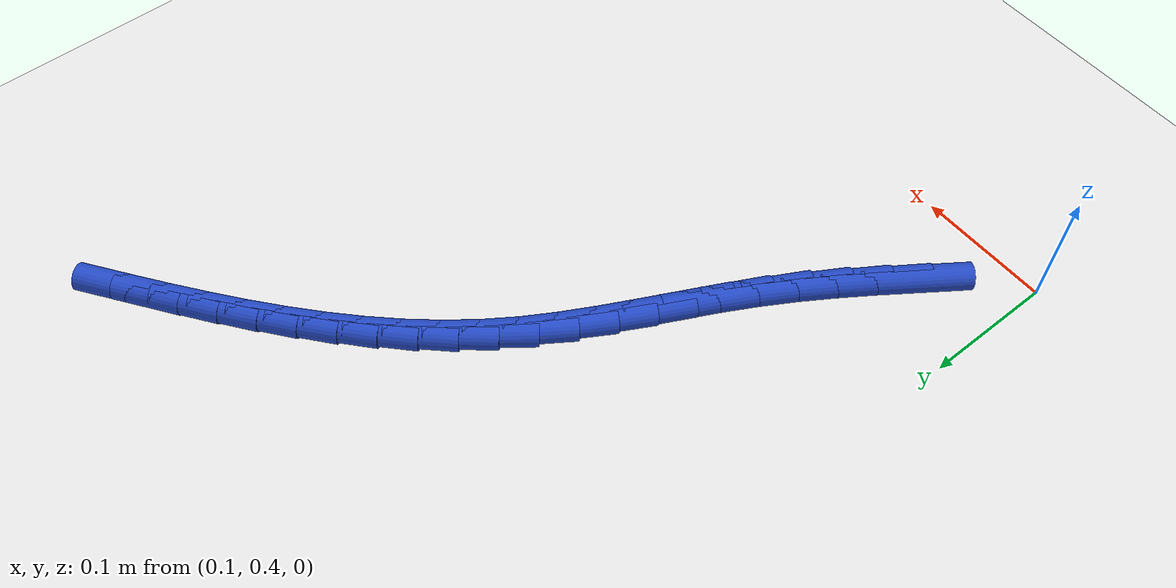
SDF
<sdf version="1.6">
 <world name="default">
  <model name="ground_plane">
   <static>1</static>
   <link name="link">
    <collision name="collision">
     <geometry><plane><normal>0 0 1</normal><size>100 100</size></plane></geometry>
     <surface><friction><ode><mu>100</mu><mu2>50</mu2></ode></friction></surface>
    </collision>
    <visual name="visual">
     <cast_shadows>0</cast_shadows>
     <geometry><plane><normal>0 0 1</normal><size>100 100</size></plane></geometry>
     <material>
      <script><uri>file://media/materials/scripts/gazebo.material</uri><name>Gazebo/WhiteGlow</name></script>
     </material>
    </visual>
   </link>
  </model>
  <model name="line">
   <link name="link_18">
    <pose>0.15859723531758346 0.4648331739349454 0.01 0 1.57 0.9675611137305057</pose>
    <collision name="collision">
     <geometry><cylinder><radius>0.01</radius><length>0.08</length></cylinder></geometry>
    </collision>
    <visual name="visual">
     <material>
      <script><name>Gazebo/Blue</name><uri>file://media/materials/scripts/gazebo.material</uri></script>
     </material>
     <geometry><cylinder><radius>0.01</radius><length>0.08</length></cylinder></geometry>
    </visual>
   </link>
   <link name="link_19">
    <pose>0.1746940648679667 0.48819927132200175 0.01 0 1.57 0.9856859068521513</pose>
    <collision name="collision">
     <geometry><cylinder><radius>0.01</radius><length>0.08</length></cylinder></geometry>
    </collision>
    <visual name="visual">
     <material>
      <script><name>Gazebo/Blue</name><uri>file://media/materials/scripts/gazebo.material</uri></script>
     </material>
     <geometry><cylinder><radius>0.01</radius><length>0.08</length></cylinder></geometry>
    </visual>
   </link>
   <link name="link_20">
    <pose>0.1903628316878648 0.5118503437807991 0.01 0 1.57 1.0123558316432582</pose>
    <collision name="collision">
     <geometry><cylinder><radius>0.01</radius><length>0.08</length></cylinder></geometry>
    </collision>
    <visual name="visual">
     <material>
      <script><name>Gazebo/Blue</name><uri>file://media/materials/scripts/gazebo.material</uri></script>
     </material>
     <geometry><cylinder><radius>0.01</radius><length>0.08</length></cylinder></geometry>
    </visual>
   </link>
   <link name="link_21">
    <pose>0.2053828253409966 0.5358908280870864 0.01 0 1.57 1.047613510016471</pose>
    <collision name="collision">
     <geometry><cylinder><radius>0.01</radius><length>0.08</length></cylinder></geometry>
    </collision>
    <visual name="visual">
     <material>
      <script><name>Gazebo/Blue</name><uri>file://media/materials/scripts/gazebo.material</uri></script>
     </material>
     <geometry><cylinder><radius>0.01</radius><length>0.08</length></cylinder></geometry>
    </visual>
   </link>
   <link name="link_22">
    <pose>0.219533916381092 0.5604247988125045 0.01 0 1.57 1.0848262253834746</pose>
    <collision name="collision">
     <geometry><cylinder><radius>0.01</radius><length>0.08</length></cylinder></geometry>
    </collision>
    <visual name="visual">
     <material>
      <script><name>Gazebo/Blue</name><uri>file://media/materials/scripts/gazebo.material</uri></script>
     </material>
     <geometry><cylinder><radius>0.01</radius><length>0.08</length></cylinder></geometry>
    </visual>
   </link>
   <link name="link_23">
    <pose>0.23275620102112984 0.5854564417338939 0.01 0 1.57 1.1083443580639825</pose>
    <collision name="collision">
     <geometry><cylinder><radius>0.01</radius><length>0.08</length></cylinder></geometry>
    </collision>
    <visual name="visual">
     <material>
      <script><name>Gazebo/Blue</name><uri>file://media/materials/scripts/gazebo.material</uri></script>
     </material>
     <geometry><cylinder><radius>0.01</radius><length>0.08</length></cylinder></geometry>
    </visual>
   </link>
   <link name="link_24">
    <pose>0.24536744147705944 0.6107544959334092 0.01 0 1.57 1.1159560403867228</pose>
    <collision name="collision">
     <geometry><cylinder><radius>0.01</radius><length>0.08</length></cylinder></geometry>
    </collision>
    <visual name="visual">
     <material>
      <script><name>Gazebo/Blue</name><uri>file://media/materials/scripts/gazebo.material</uri></script>
     </material>
     <geometry><cylinder><radius>0.01</radius><length>0.08</length></cylinder></geometry>
    </visual>
   </link>
   <link name="link_25">
    <pose>0.25773978223000543 0.6360537971911228 0.01 0 1.57 1.1075356536118606</pose>
    <collision name="collision">
     <geometry><cylinder><radius>0.01</radius><length>0.08</length></cylinder></geometry>
    </collision>
    <visual name="visual">
     <material>
      <script><name>Gazebo/Blue</name><uri>file://media/materials/scripts/gazebo.material</uri></script>
     </material>
     <geometry><cylinder><radius>0.01</radius><length>0.08</length></cylinder></geometry>
    </visual>
   </link>
   <link name="link_26">
    <pose>0.27024536776109254 0.6610891812871063 0.01 0 1.57 1.0827169568364938</pose>
    <collision name="collision">
     <geometry><cylinder><radius>0.01</radius><length>0.08</length></cylinder></geometry>
    </collision>
    <visual name="visual">
     <material>
      <script><name>Gazebo/Blue</name><uri>file://media/materials/scripts/gazebo.material</uri></script>
     </material>
     <geometry><cylinder><radius>0.01</radius><length>0.08</length></cylinder></geometry>
    </visual>
   </link>
   <link name="link_27">
    <pose>0.2832563425514456 0.6855954840014323 0.01 0 1.57 1.0409466941373826</pose>
    <collision name="collision">
     <geometry><cylinder><radius>0.01</radius><length>0.08</length></cylinder></geometry>
    </collision>
    <visual name="visual">
     <material>
      <script><name>Gazebo/Blue</name><uri>file://media/materials/scripts/gazebo.material</uri></script>
     </material>
     <geometry><cylinder><radius>0.01</radius><length>0.08</length></cylinder></geometry>
    </visual>
   </link>
   <link name="link_28">
    <pose>0.29714485108218924 0.7093075411141728 0.01 0 1.57 0.9829399287635704</pose>
    <collision name="collision">
     <geometry><cylinder><radius>0.01</radius><length>0.08</length></cylinder></geometry>
    </collision>
    <visual name="visual">
     <material>
      <script><name>Gazebo/Blue</name><uri>file://media/materials/scripts/gazebo.material</uri></script>
     </material>
     <geometry><cylinder><radius>0.01</radius><length>0.08</length></cylinder></geometry>
    </visual>
   </link>
   <link name="link_29">
    <pose>0.312256293345562 0.7319818865570717 0.01 0 1.57 0.9216318967990224</pose>
    <collision name="collision">
     <geometry><cylinder><radius>0.01</radius><length>0.08</length></cylinder></geometry>
    </collision>
    <visual name="visual">
     <material>
      <script><name>Gazebo/Blue</name><uri>file://media/materials/scripts/gazebo.material</uri></script>
     </material>
     <geometry><cylinder><radius>0.01</radius><length>0.08</length></cylinder></geometry>
    </visual>
   </link>
   <link name="link_30">
    <pose>0.32866077981837427 0.7535984002261491 0.01 0 1.57 0.8652897270511576</pose>
    <collision name="collision">
     <geometry><cylinder><radius>0.01</radius><length>0.08</length></cylinder></geometry>
    </collision>
    <visual name="visual">
     <material>
      <script><name>Gazebo/Blue</name><uri>file://media/materials/scripts/gazebo.material</uri></script>
     </material>
     <geometry><cylinder><radius>0.01</radius><length>0.08</length></cylinder></geometry>
    </visual>
   </link>
   <link name="link_31">
    <pose>0.34626638290057643 0.7742684256166454 0.01 0 1.57 0.8145436618437636</pose>
    <collision name="collision">
     <geometry><cylinder><radius>0.01</radius><length>0.08</length></cylinder></geometry>
    </collision>
    <visual name="visual">
     <material>
      <script><name>Gazebo/Blue</name><uri>file://media/materials/scripts/gazebo.material</uri></script>
     </material>
     <geometry><cylinder><radius>0.01</radius><length>0.08</length></cylinder></geometry>
    </visual>
   </link>
   <link name="link_32">
    <pose>0.3649790948919068 0.7941049938361572 0.01 0 1.57 0.7697032536656697</pose>
    <collision name="collision">
     <geometry><cylinder><radius>0.01</radius><length>0.08</length></cylinder></geometry>
    </collision>
    <visual name="visual">
     <material>
      <script><name>Gazebo/Blue</name><uri>file://media/materials/scripts/gazebo.material</uri></script>
     </material>
     <geometry><cylinder><radius>0.01</radius><length>0.08</length></cylinder></geometry>
    </visual>
   </link>
   <link name="link_33">
    <pose>0.38470490809210356 0.8132211359922803 0.01 0 1.57 0.730893830745445</pose>
    <collision name="collision">
     <geometry><cylinder><radius>0.01</radius><length>0.08</length></cylinder></geometry>
    </collision>
    <visual name="visual">
     <material>
      <script><name>Gazebo/Blue</name><uri>file://media/materials/scripts/gazebo.material</uri></script>
     </material>
     <geometry><cylinder><radius>0.01</radius><length>0.08</length></cylinder></geometry>
    </visual>
   </link>
   <link name="link_34">
    <pose>0.4053498148009052 0.8317298831926113 0.01 0 1.57 0.6981021962151122</pose>
    <collision name="collision">
     <geometry><cylinder><radius>0.01</radius><length>0.08</length></cylinder></geometry>
    </collision>
    <visual name="visual">
     <material>
      <script><name>Gazebo/Blue</name><uri>file://media/materials/scripts/gazebo.material</uri></script>
     </material>
     <geometry><cylinder><radius>0.01</radius><length>0.08</length></cylinder></geometry>
    </visual>
   </link>
   <link name="link_35">
    <pose>0.4268198073180501 0.8497442665447463 0.01 0 1.57 0.6712208617541685</pose>
    <collision name="collision">
     <geometry><cylinder><radius>0.01</radius><length>0.08</length></cylinder></geometry>
    </collision>
    <visual name="visual">
     <material>
      <script><name>Gazebo/Blue</name><uri>file://media/materials/scripts/gazebo.material</uri></script>
     </material>
     <geometry><cylinder><radius>0.01</radius><length>0.08</length></cylinder></geometry>
    </visual>
   </link>
   <link name="link_36">
    <pose>0.4490208779432763 0.8673773171562814 0.01 0 1.57 0.6500858432749537</pose>
    <collision name="collision">
     <geometry><cylinder><radius>0.01</radius><length>0.08</length></cylinder></geometry>
    </collision>
    <visual name="visual">
     <material>
      <script><name>Gazebo/Blue</name><uri>file://media/materials/scripts/gazebo.material</uri></script>
     </material>
     <geometry><cylinder><radius>0.01</radius><length>0.08</length></cylinder></geometry>
    </visual>
   </link>
   <link name="link_37">
    <pose>0.47185901897632243 0.8847420661348131 0.01 0 1.57 0.6345060488060582</pose>
    <collision name="collision">
     <geometry><cylinder><radius>0.01</radius><length>0.08</length></cylinder></geometry>
    </collision>
    <visual name="visual">
     <material>
      <script><name>Gazebo/Blue</name><uri>file://media/materials/scripts/gazebo.material</uri></script>
     </material>
     <geometry><cylinder><radius>0.01</radius><length>0.08</length></cylinder></geometry>
    </visual>
   </link>
   <link name="link_38">
    <pose>0.49524022271692675 0.9019515445879376 0.01 0 1.57 0.6242842456097483</pose>
    <collision name="collision">
     <geometry><cylinder><radius>0.01</radius><length>0.08</length></cylinder></geometry>
    </collision>
    <visual name="visual">
     <material>
      <script><name>Gazebo/Blue</name><uri>file://media/materials/scripts/gazebo.material</uri></script>
     </material>
     <geometry><cylinder><radius>0.01</radius><length>0.08</length></cylinder></geometry>
    </visual>
   </link>
  </model>
 </world>
</sdf>
